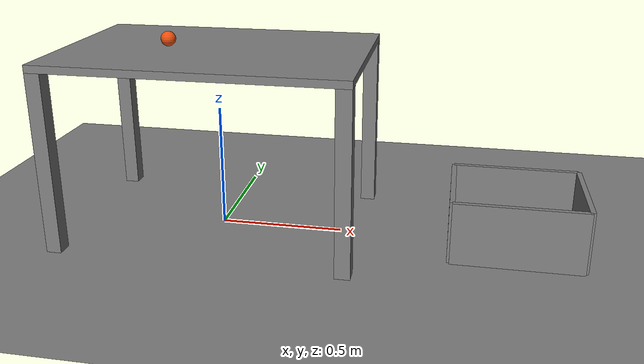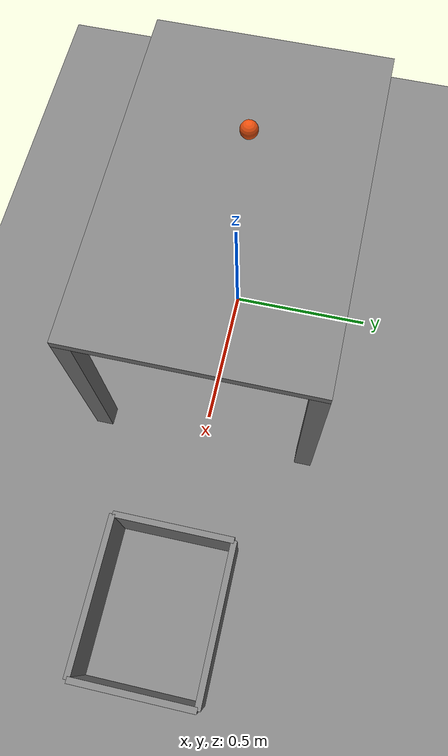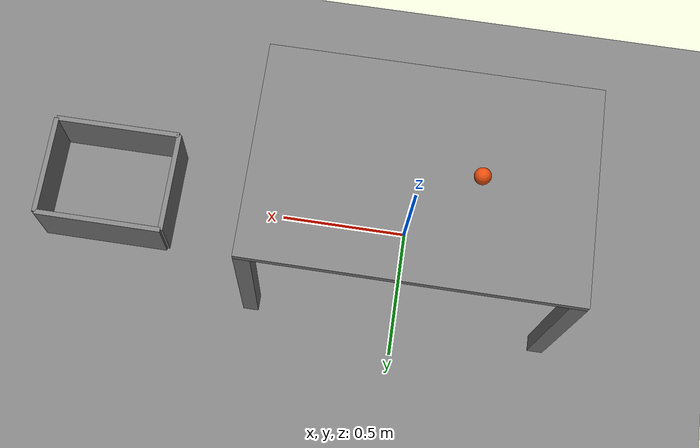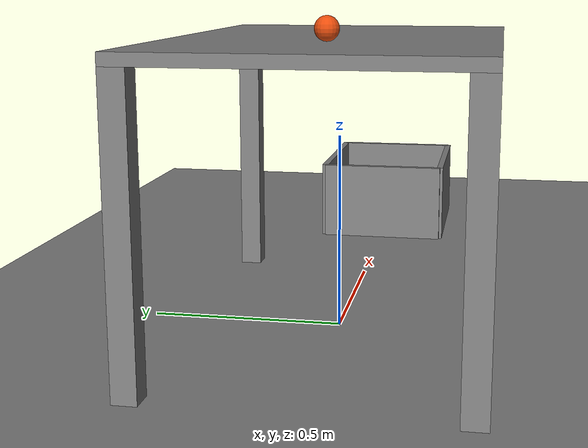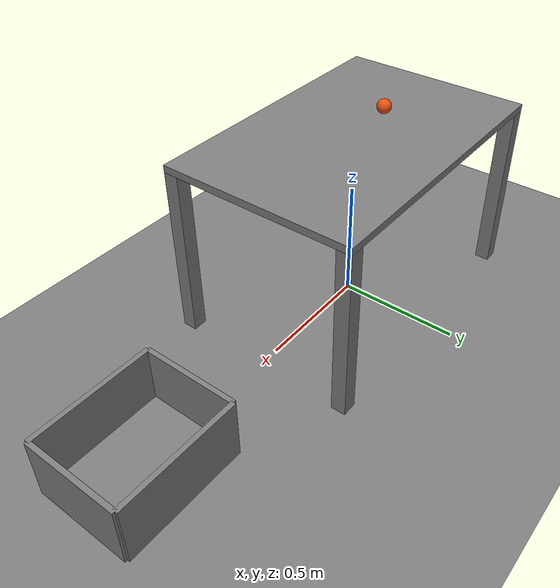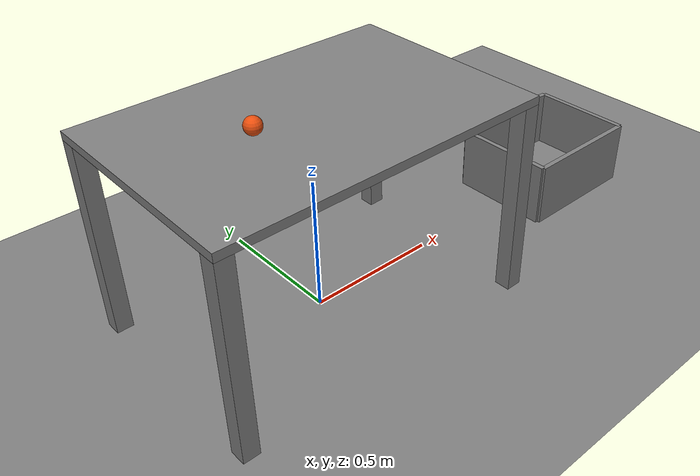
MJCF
<mujoco model="rolling_ball_into_a_bucket">
  <compiler angle="radian"/>
  <option timestep="0.002"/>
  <worldbody>
    <geom name="floor" type="plane" size="6 6 0.1" friction="0.8 0.005 0.002"/>
    <body name="table">
      <geom name="table_top" type="box" pos="0 0 0.735" size="0.6 0.4 0.015"/>
      <geom name="table_near_left_leg" type="box" pos="-0.57 0.37 0.36" size="0.03 0.03 0.36"/>
      <geom name="table_near_right_leg" type="box" pos="-0.57 -0.37 0.36" size="0.03 0.03 0.36"/>
      <geom name="table_far_left_leg" type="box" pos="0.57 0.37 0.36" size="0.03 0.03 0.36"/>
      <geom name="table_far_right_leg" type="box" pos="0.57 -0.37 0.36" size="0.03 0.03 0.36"/>
    </body>
    <body name="table edge">
    </body>
    <body name="bucket">
      <geom name="bucket_base" type="box" pos="1.2 0 0.01" size="0.25 0.2 0.01"/>
      <geom name="bucket_near_wall" type="box" pos="0.95 0 0.125" size="0.01 0.2 0.125"/>
      <geom name="bucket_far_wall" type="box" pos="1.45 0 0.125" size="0.01 0.2 0.125"/>
      <geom name="bucket_left_wall" type="box" pos="1.2 0.2 0.125" size="0.25 0.01 0.125"/>
      <geom name="bucket_right_wall" type="box" pos="1.2 -0.2 0.125" size="0.25 0.01 0.125"/>
    </body>
    <body name="ball" pos="-0.2 0 0.78">
      <freejoint/>
      <geom name="ball" type="sphere" pos="0 0 0" size="0.03" mass="0.1" condim="6" friction="0.7 0 0" solref="0.01 1" rgba="0.9 0.3 0.05 1"/>
    </body>
  </worldbody>
  <keyframe>
    <key name="start" qpos="-0.2 0 0.78 1 0 0 0" qvel="1.6 0 0 0 53.333 0"/>
  </keyframe>
</mujoco>
